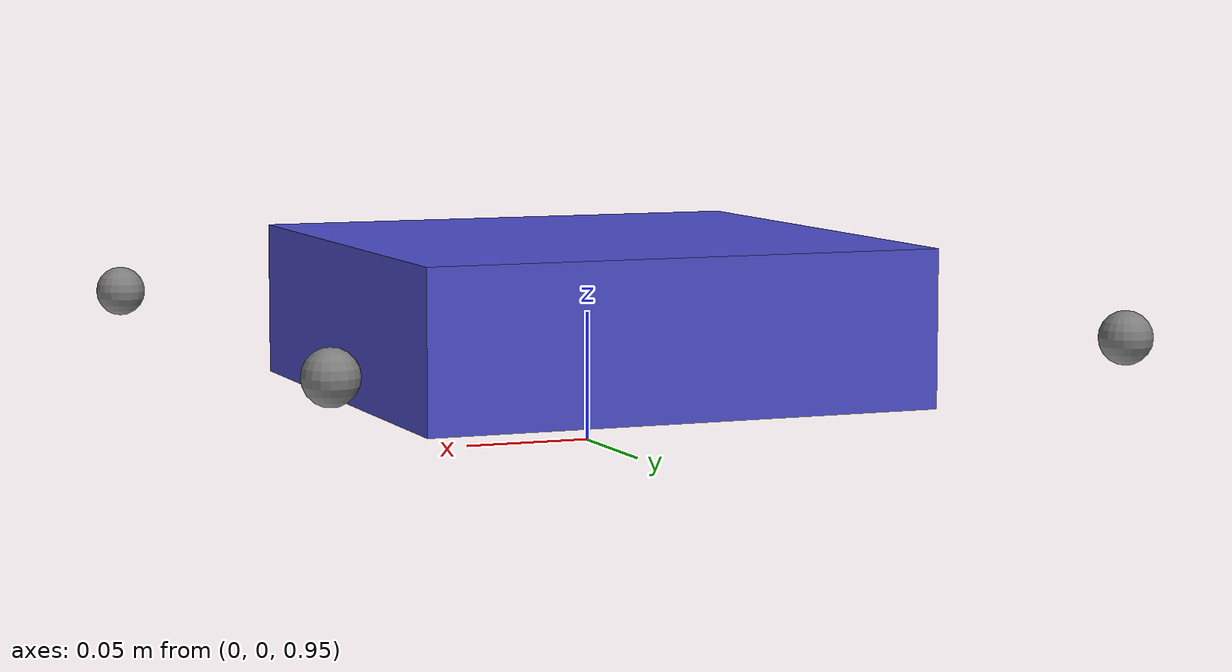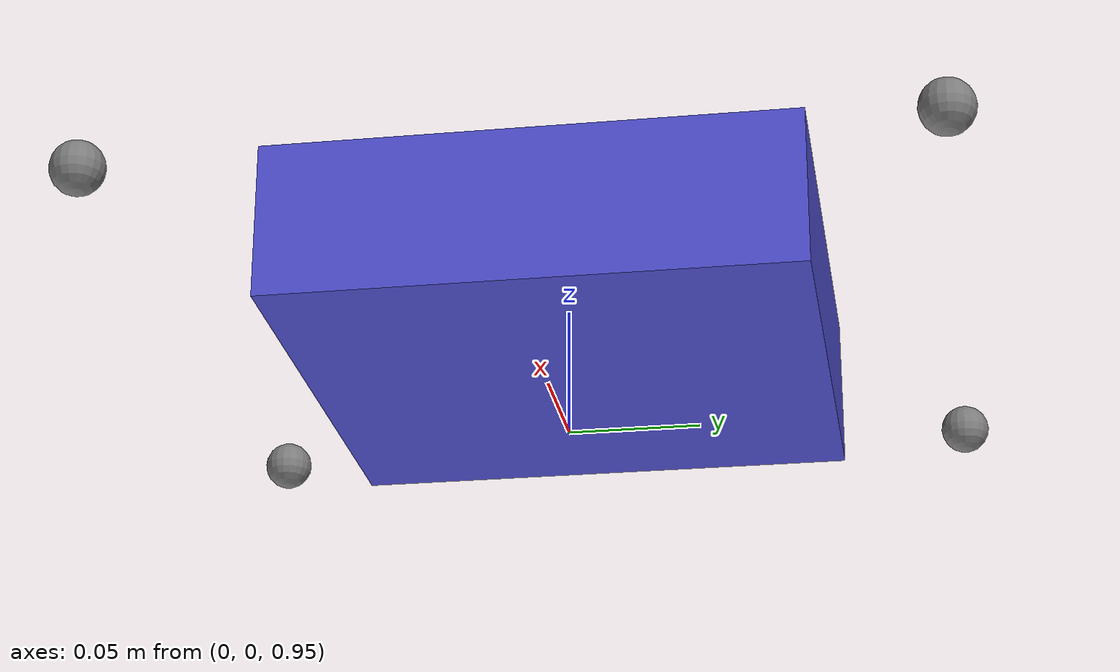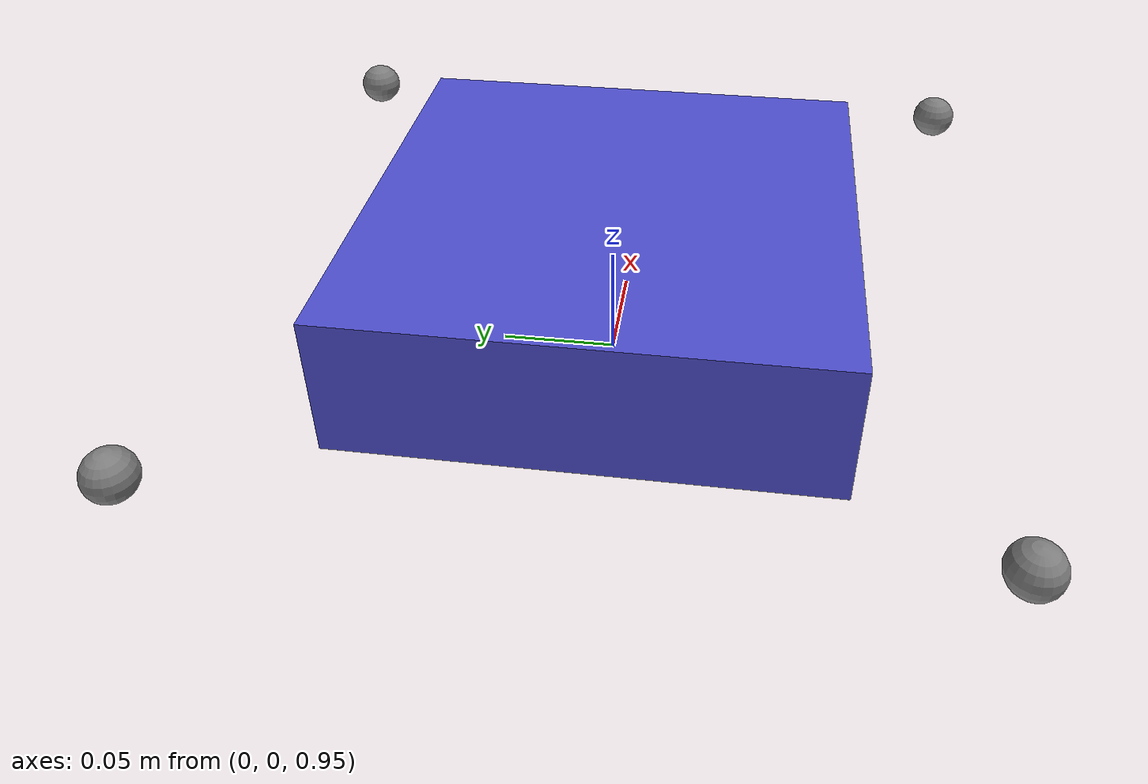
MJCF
<mujoco model="drone">
  <option gravity="0 0 -9.81" timestep="0.01"/>

  <worldbody>
    <light pos="0 0 10"/>
    <geom name="floor" type="plane" size="20 20 0.1" rgba="0.8 0.9 0.8 1"/>

    <body name="drone" pos="0 0 1">
      <freejoint name="root"/>
      <geom name="body" type="box" size="0.1 0.1 0.03" mass="1.0" rgba="0.3 0.3 0.8 1"/>

      <!-- 四个电机 -->
      <site name="motor1" pos=" 0.15  0.15 0" size="0.01"/>
      <site name="motor2" pos="-0.15  0.15 0" size="0.01"/>
      <site name="motor3" pos="-0.15 -0.15 0" size="0.01"/>
      <site name="motor4" pos=" 0.15 -0.15 0" size="0.01"/>
    </body>
  </worldbody>

  <actuator>
    <general name="thrust1" site="motor1" gear="0 0 1 0 0 0" ctrlrange="0 5"/>
    <general name="thrust2" site="motor2" gear="0 0 1 0 0 0" ctrlrange="0 5"/>
    <general name="thrust3" site="motor3" gear="0 0 1 0 0 0" ctrlrange="0 5"/>
    <general name="thrust4" site="motor4" gear="0 0 1 0 0 0" ctrlrange="0 5"/>
  </actuator>
</mujoco>
